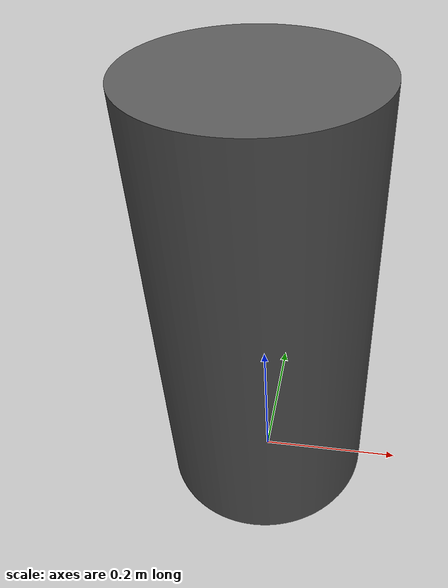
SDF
<?xml version="1.0" ?>
<sdf version="1.5">
  <model name="smietnik">
    <static>true</static>
    <link name="link">
      <collision name="collision">
        <geometry>
          <mesh>
            <uri>model://smietnik/meshes/Smietnik.dae</uri>
          </mesh>
        </geometry>
      </collision>
      <visual name="visual">
        <geometry>
          <mesh>
            <uri>model://smietnik/meshes/Smietnik.dae</uri>
          </mesh>
        </geometry>
      </visual>
    </link>
  </model>
</sdf>
